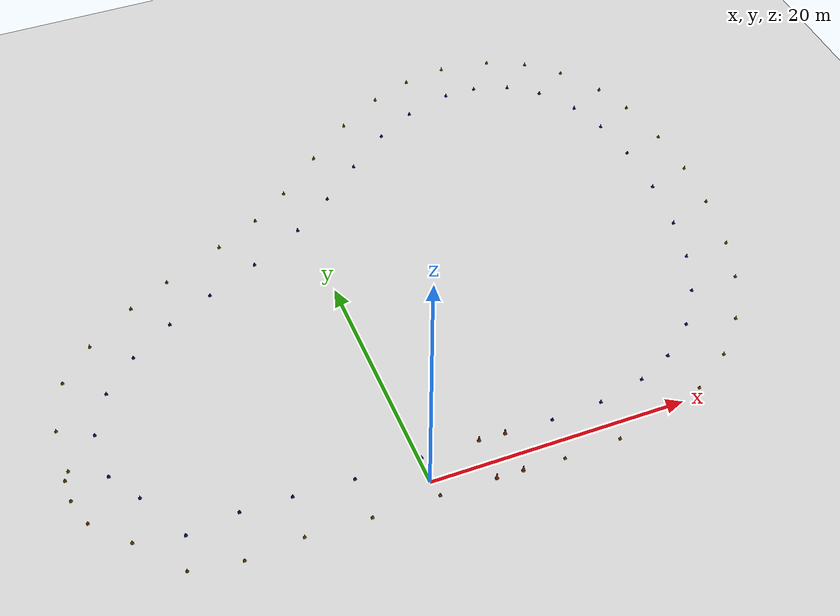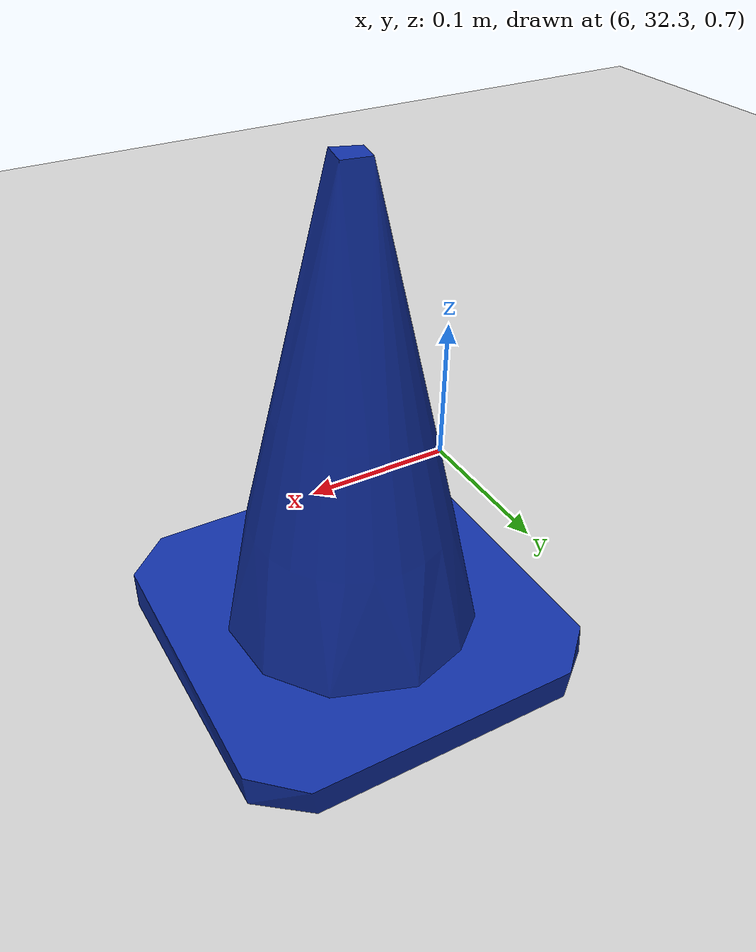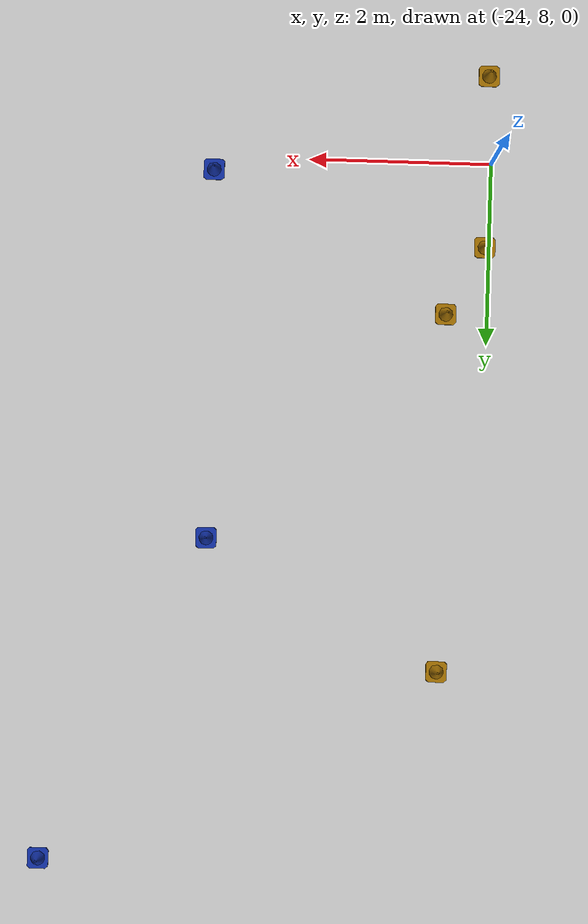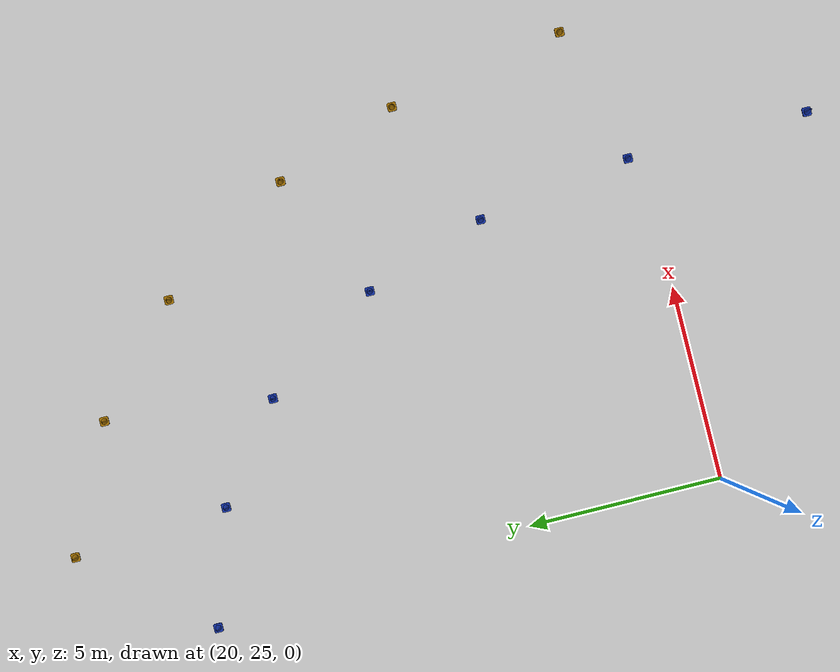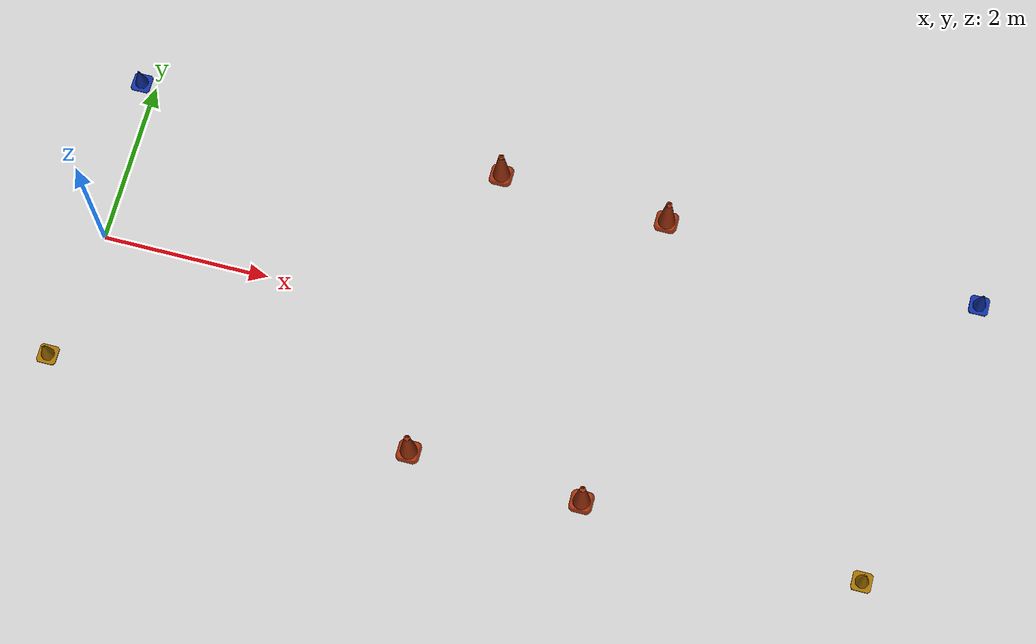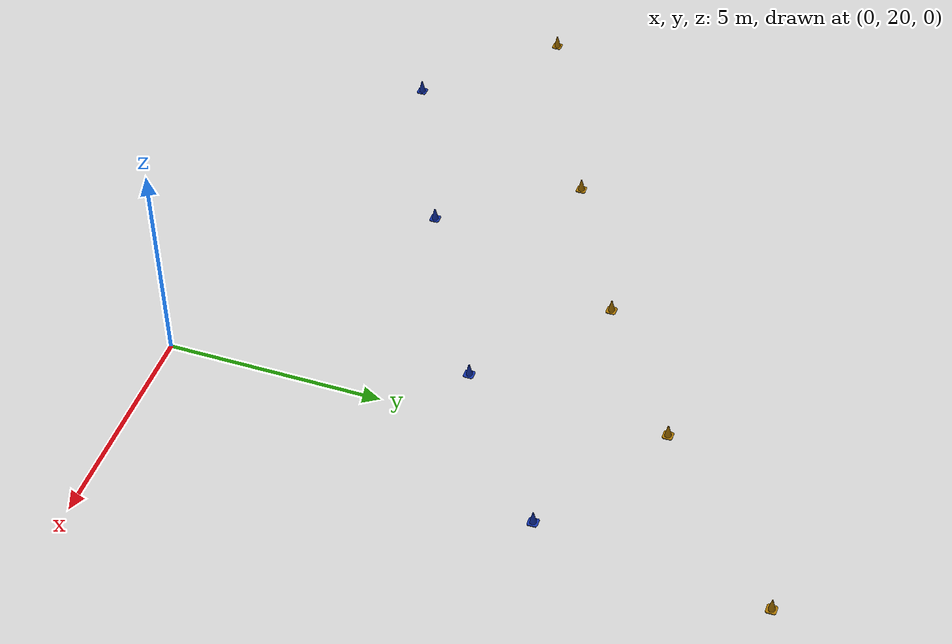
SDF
<sdf version='1.6'>
  <world name='small_track_2'>
    <gui fullscreen='0'>
      <camera name='user_camera'>
        <pose frame=''>-40 40 20 0 0.667643 -1</pose>
        <view_controller>orbit</view_controller>
        <projection_type>perspective</projection_type>
      </camera>
    </gui>

    <!-- WORLD SETTINGS -->
    <scene>
      <ambient>1.0 1.0 1.0 1.0</ambient>
      <shadows>false</shadows>
    </scene>

    <spherical_coordinates>
      <heading_deg>180</heading_deg>

      <!-- Appleton Tower coordinates -->
      <latitude_deg>-27.690733</latitude_deg>
      <longitude_deg>152.656715</longitude_deg>
    </spherical_coordinates>

    <light name='sun' type='directional'>
      <cast_shadows>1</cast_shadows>
      <pose frame=''>0 0 10 0 -0 0</pose>
      <diffuse>0.8 0.8 0.8 1</diffuse>
      <specular>0.1 0.1 0.1 1</specular>
      <attenuation>
        <range>1000</range>
        <constant>0.9</constant>
        <linear>0.01</linear>
        <quadratic>0.001</quadratic>
      </attenuation>
      <direction>-0.5 0.5 -1</direction>
    </light>

    <!-- MODELS -->
    <include>
      <uri>model://ground_plane</uri>
      <pose>0.0 0.0 0.0 0 0 0</pose>
    </include>

    <include>
      <uri>model://small_track_2</uri>
      <pose>0 0 0.5 0 0 0</pose>
    </include>

  </world>
</sdf>

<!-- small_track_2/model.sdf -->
<sdf version='1.6'>
  <model name='track'>

    <include>
      <pose>10.07 1.47 0.15 0 0 0</pose>
      <uri>model://blue_cone</uri>
      <name>blue_cone_0</name>

      <covariance x="0.01" y="0.01" xy="0.0"/>

    </include>

    <include>
      <pose>14.07 1.67 0.15 0 0 0</pose>
      <uri>model://blue_cone</uri>
      <name>blue_cone_1</name>

      <covariance x="0.01" y="0.01" xy="0.0"/>

    </include>

    <include>
      <pose>17.85 2.52 0.15 0 0 0</pose>
      <uri>model://blue_cone</uri>
      <name>blue_cone_2</name>

      <covariance x="0.01" y="0.01" xy="0.0"/>

    </include>

    <include>
      <pose>20.75 3.87 0.15 0 0 0</pose>
      <uri>model://blue_cone</uri>
      <name>blue_cone_3</name>

      <covariance x="0.01" y="0.01" xy="0.0"/>

    </include>

    <include>
      <pose>23.57 6.19 0.15 0 0 0</pose>
      <uri>model://blue_cone</uri>
      <name>blue_cone_4</name>

      <covariance x="0.01" y="0.01" xy="0.0"/>

    </include>

    <include>
      <pose>25.68 9.18 0.15 0 0 0</pose>
      <uri>model://blue_cone</uri>
      <name>blue_cone_5</name>

      <covariance x="0.01" y="0.01" xy="0.0"/>

    </include>

    <include>
      <pose>27.1 12.65 0.15 0 0 0</pose>
      <uri>model://blue_cone</uri>
      <name>blue_cone_6</name>

      <covariance x="0.01" y="0.01" xy="0.0"/>

    </include>

    <include>
      <pose>27.96 16.42 0.15 0 0 0</pose>
      <uri>model://blue_cone</uri>
      <name>blue_cone_7</name>

      <covariance x="0.01" y="0.01" xy="0.0"/>

    </include>

    <include>
      <pose>28.42 20.92 0.15 0 0 0</pose>
      <uri>model://blue_cone</uri>
      <name>blue_cone_8</name>

      <covariance x="0.01" y="0.01" xy="0.0"/>

    </include>

    <include>
      <pose>28.38 25.49 0.15 0 0 0</pose>
      <uri>model://blue_cone</uri>
      <name>blue_cone_9</name>

      <covariance x="0.01" y="0.01" xy="0.0"/>

    </include>

    <include>
      <pose>27.8 29.39 0.15 0 0 0</pose>
      <uri>model://blue_cone</uri>
      <name>blue_cone_10</name>

      <covariance x="0.01" y="0.01" xy="0.0"/>

    </include>

    <include>
      <pose>26.75 32.48 0.15 0 0 0</pose>
      <uri>model://blue_cone</uri>
      <name>blue_cone_11</name>

      <covariance x="0.01" y="0.01" xy="0.0"/>

    </include>

    <include>
      <pose>24.76 35.45 0.15 0 0 0</pose>
      <uri>model://blue_cone</uri>
      <name>blue_cone_12</name>

      <covariance x="0.01" y="0.01" xy="0.0"/>

    </include>

    <include>
      <pose>22.43 37.23 0.15 0 0 0</pose>
      <uri>model://blue_cone</uri>
      <name>blue_cone_13</name>

      <covariance x="0.01" y="0.01" xy="0.0"/>

    </include>

    <include>
      <pose>19.59 38.14 0.15 0 0 0</pose>
      <uri>model://blue_cone</uri>
      <name>blue_cone_14</name>

      <covariance x="0.01" y="0.01" xy="0.0"/>

    </include>

    <include>
      <pose>16.93 38.16 0.15 0 0 0</pose>
      <uri>model://blue_cone</uri>
      <name>blue_cone_15</name>

      <covariance x="0.01" y="0.01" xy="0.0"/>

    </include>

    <include>
      <pose>13.0 37.03 0.15 0 0 0</pose>
      <uri>model://blue_cone</uri>
      <name>blue_cone_16</name>

      <covariance x="0.01" y="0.01" xy="0.0"/>

    </include>

    <include>
      <pose>9.69 35.16 0.15 0 0 0</pose>
      <uri>model://blue_cone</uri>
      <name>blue_cone_17</name>

      <covariance x="0.01" y="0.01" xy="0.0"/>

    </include>

    <include>
      <pose>6.11 32.37 0.15 0 0 0</pose>
      <uri>model://blue_cone</uri>
      <name>blue_cone_18</name>

      <covariance x="0.01" y="0.01" xy="0.0"/>

    </include>

    <include>
      <pose>2.73 29.44 0.15 0 0 0</pose>
      <uri>model://blue_cone</uri>
      <name>blue_cone_19</name>

      <covariance x="0.01" y="0.01" xy="0.0"/>

    </include>

    <include>
      <pose>-0.75 26.8 0.15 0 0 0</pose>
      <uri>model://blue_cone</uri>
      <name>blue_cone_20</name>

      <covariance x="0.01" y="0.01" xy="0.0"/>

    </include>

    <include>
      <pose>-5.17 24.36 0.15 0 0 0</pose>
      <uri>model://blue_cone</uri>
      <name>blue_cone_21</name>

      <covariance x="0.01" y="0.01" xy="0.0"/>

    </include>

    <include>
      <pose>-9.41 22.44 0.15 0 0 0</pose>
      <uri>model://blue_cone</uri>
      <name>blue_cone_22</name>

      <covariance x="0.01" y="0.01" xy="0.0"/>

    </include>

    <include>
      <pose>-13.13 20.61 0.15 0 0 0</pose>
      <uri>model://blue_cone</uri>
      <name>blue_cone_23</name>

      <covariance x="0.01" y="0.01" xy="0.0"/>

    </include>

    <include>
      <pose>-16.57 18.35 0.15 0 0 0</pose>
      <uri>model://blue_cone</uri>
      <name>blue_cone_24</name>

      <covariance x="0.01" y="0.01" xy="0.0"/>

    </include>

    <include>
      <pose>-19.31 15.66 0.15 0 0 0</pose>
      <uri>model://blue_cone</uri>
      <name>blue_cone_25</name>

      <covariance x="0.01" y="0.01" xy="0.0"/>

    </include>

    <include>
      <pose>-21.0 12.2 0.15 0 0 0</pose>
      <uri>model://blue_cone</uri>
      <name>blue_cone_26</name>

      <covariance x="0.01" y="0.01" xy="0.0"/>

    </include>

    <include>
      <pose>-20.97 8.24 0.15 0 0 0</pose>
      <uri>model://blue_cone</uri>
      <name>blue_cone_27</name>

      <covariance x="0.01" y="0.01" xy="0.0"/>

    </include>

    <include>
      <pose>-19.4 5.65 0.15 0 0 0</pose>
      <uri>model://blue_cone</uri>
      <name>blue_cone_28</name>

      <covariance x="0.01" y="0.01" xy="0.0"/>

    </include>

    <include>
      <pose>-17.3 1.5 0.15 0 0 0</pose>
      <uri>model://blue_cone</uri>
      <name>blue_cone_29</name>

      <covariance x="0.01" y="0.01" xy="0.0"/>

    </include>

    <include>
      <pose>-13.36 2.0 0.15 0 0 0</pose>
      <uri>model://blue_cone</uri>
      <name>blue_cone_30</name>

      <covariance x="0.01" y="0.01" xy="0.0"/>

    </include>

    <include>
      <pose>-9.54 1.89 0.15 0 0 0</pose>
      <uri>model://blue_cone</uri>
      <name>blue_cone_31</name>

      <covariance x="0.01" y="0.01" xy="0.0"/>

    </include>

    <include>
      <pose>-5.01 1.72 0.15 0 0 0</pose>
      <uri>model://blue_cone</uri>
      <name>blue_cone_32</name>

      <covariance x="0.01" y="0.01" xy="0.0"/>

    </include>

    <include>
      <pose>-0.0 1.75 0.15 0 0 0</pose>
      <uri>model://blue_cone</uri>
      <name>blue_cone_33</name>

      <covariance x="0.01" y="0.01" xy="0.0"/>

    </include>

    <include>
      <pose>9.43 -2.02 0.15 0 0 0</pose>
      <uri>model://yellow_cone</uri>
      <name>yellow_cone_34</name>

      <covariance x="0.01" y="0.01" xy="0.0"/>

    </include>

    <include>
      <pose>13.85 -1.87 0.15 0 0 0</pose>
      <uri>model://yellow_cone</uri>
      <name>yellow_cone_35</name>

      <covariance x="0.01" y="0.01" xy="0.0"/>

    </include>

    <include>
      <pose>18.35 -1.0 0.15 0 0 0</pose>
      <uri>model://yellow_cone</uri>
      <name>yellow_cone_36</name>

      <covariance x="0.01" y="0.01" xy="0.0"/>

    </include>

    <include>
      <pose>21.43 0.24 0.15 0 0 0</pose>
      <uri>model://yellow_cone</uri>
      <name>yellow_cone_37</name>

      <covariance x="0.01" y="0.01" xy="0.0"/>

    </include>

    <include>
      <pose>24.72 2.45 0.15 0 0 0</pose>
      <uri>model://yellow_cone</uri>
      <name>yellow_cone_38</name>

      <covariance x="0.01" y="0.01" xy="0.0"/>

    </include>

    <include>
      <pose>27.38 5.33 0.15 0 0 0</pose>
      <uri>model://yellow_cone</uri>
      <name>yellow_cone_39</name>

      <covariance x="0.01" y="0.01" xy="0.0"/>

    </include>

    <include>
      <pose>29.59 9.26 0.15 0 0 0</pose>
      <uri>model://yellow_cone</uri>
      <name>yellow_cone_40</name>

      <covariance x="0.01" y="0.01" xy="0.0"/>

    </include>

    <include>
      <pose>30.79 12.84 0.15 0 0 0</pose>
      <uri>model://yellow_cone</uri>
      <name>yellow_cone_41</name>

      <covariance x="0.01" y="0.01" xy="0.0"/>

    </include>

    <include>
      <pose>31.67 17.69 0.15 0 0 0</pose>
      <uri>model://yellow_cone</uri>
      <name>yellow_cone_42</name>

      <covariance x="0.01" y="0.01" xy="0.0"/>

    </include>

    <include>
      <pose>31.96 21.98 0.15 0 0 0</pose>
      <uri>model://yellow_cone</uri>
      <name>yellow_cone_43</name>

      <covariance x="0.01" y="0.01" xy="0.0"/>

    </include>

    <include>
      <pose>31.82 26.37 0.15 0 0 0</pose>
      <uri>model://yellow_cone</uri>
      <name>yellow_cone_44</name>

      <covariance x="0.01" y="0.01" xy="0.0"/>

    </include>

    <include>
      <pose>31.04 30.84 0.15 0 0 0</pose>
      <uri>model://yellow_cone</uri>
      <name>yellow_cone_45</name>

      <covariance x="0.01" y="0.01" xy="0.0"/>

    </include>

    <include>
      <pose>29.92 33.96 0.15 0 0 0</pose>
      <uri>model://yellow_cone</uri>
      <name>yellow_cone_46</name>

      <covariance x="0.01" y="0.01" xy="0.0"/>

    </include>

    <include>
      <pose>27.75 37.35 0.15 0 0 0</pose>
      <uri>model://yellow_cone</uri>
      <name>yellow_cone_47</name>

      <covariance x="0.01" y="0.01" xy="0.0"/>

    </include>

    <include>
      <pose>25.23 39.63 0.15 0 0 0</pose>
      <uri>model://yellow_cone</uri>
      <name>yellow_cone_48</name>

      <covariance x="0.01" y="0.01" xy="0.0"/>

    </include>

    <include>
      <pose>22.14 41.14 0.15 0 0 0</pose>
      <uri>model://yellow_cone</uri>
      <name>yellow_cone_49</name>

      <covariance x="0.01" y="0.01" xy="0.0"/>

    </include>

    <include>
      <pose>17.95 41.73 0.15 0 0 0</pose>
      <uri>model://yellow_cone</uri>
      <name>yellow_cone_50</name>

      <covariance x="0.01" y="0.01" xy="0.0"/>

    </include>

    <include>
      <pose>14.36 41.22 0.15 0 0 0</pose>
      <uri>model://yellow_cone</uri>
      <name>yellow_cone_51</name>

      <covariance x="0.01" y="0.01" xy="0.0"/>

    </include>

    <include>
      <pose>10.9 39.92 0.15 0 0 0</pose>
      <uri>model://yellow_cone</uri>
      <name>yellow_cone_52</name>

      <covariance x="0.01" y="0.01" xy="0.0"/>

    </include>

    <include>
      <pose>7.13 37.64 0.15 0 0 0</pose>
      <uri>model://yellow_cone</uri>
      <name>yellow_cone_53</name>

      <covariance x="0.01" y="0.01" xy="0.0"/>

    </include>

    <include>
      <pose>3.32 34.59 0.15 0 0 0</pose>
      <uri>model://yellow_cone</uri>
      <name>yellow_cone_54</name>

      <covariance x="0.01" y="0.01" xy="0.0"/>

    </include>

    <include>
      <pose>-0.43 31.37 0.15 0 0 0</pose>
      <uri>model://yellow_cone</uri>
      <name>yellow_cone_55</name>

      <covariance x="0.01" y="0.01" xy="0.0"/>

    </include>

    <include>
      <pose>-3.61 29.13 0.15 0 0 0</pose>
      <uri>model://yellow_cone</uri>
      <name>yellow_cone_56</name>

      <covariance x="0.01" y="0.01" xy="0.0"/>

    </include>

    <include>
      <pose>-7.22 27.26 0.15 0 0 0</pose>
      <uri>model://yellow_cone</uri>
      <name>yellow_cone_57</name>

      <covariance x="0.01" y="0.01" xy="0.0"/>

    </include>

    <include>
      <pose>-12.16 25.03 0.15 0 0 0</pose>
      <uri>model://yellow_cone</uri>
      <name>yellow_cone_58</name>

      <covariance x="0.01" y="0.01" xy="0.0"/>

    </include>

    <include>
      <pose>-15.49 23.29 0.15 0 0 0</pose>
      <uri>model://yellow_cone</uri>
      <name>yellow_cone_59</name>

      <covariance x="0.01" y="0.01" xy="0.0"/>

    </include>

    <include>
      <pose>-19.35 20.61 0.15 0 0 0</pose>
      <uri>model://yellow_cone</uri>
      <name>yellow_cone_60</name>

      <covariance x="0.01" y="0.01" xy="0.0"/>

    </include>

    <include>
      <pose>-22.07 17.82 0.15 0 0 0</pose>
      <uri>model://yellow_cone</uri>
      <name>yellow_cone_61</name>

      <covariance x="0.01" y="0.01" xy="0.0"/>

    </include>

    <include>
      <pose>-23.5 13.56 0.15 0 0 0</pose>
      <uri>model://yellow_cone</uri>
      <name>yellow_cone_62</name>

      <covariance x="0.01" y="0.01" xy="0.0"/>

    </include>

    <include>
      <pose>-23.5 9.73 0.15 0 0 0</pose>
      <uri>model://yellow_cone</uri>
      <name>yellow_cone_63</name>

      <covariance x="0.01" y="0.01" xy="0.0"/>

    </include>

    <include>
      <pose>-23.9 9.0 0.15 0 0 0</pose>
      <uri>model://yellow_cone</uri>
      <name>yellow_cone_64</name>

      <covariance x="0.01" y="0.01" xy="0.0"/>

    </include>

    <include>
      <pose>-23.9 7.15 0.15 0 0 0</pose>
      <uri>model://yellow_cone</uri>
      <name>yellow_cone_65</name>

      <covariance x="0.01" y="0.01" xy="0.0"/>

    </include>

    <include>
      <pose>-23.26 4.88 0.15 0 0 0</pose>
      <uri>model://yellow_cone</uri>
      <name>yellow_cone_66</name>

      <covariance x="0.01" y="0.01" xy="0.0"/>

    </include>

    <include>
      <pose>-20.83 2.23 0.15 0 0 0</pose>
      <uri>model://yellow_cone</uri>
      <name>yellow_cone_67</name>

      <covariance x="0.01" y="0.01" xy="0.0"/>

    </include>

    <include>
      <pose>-18.0 -1.3 0.15 0 0 0</pose>
      <uri>model://yellow_cone</uri>
      <name>yellow_cone_68</name>

      <covariance x="0.01" y="0.01" xy="0.0"/>

    </include>

    <include>
      <pose>-14.2 -1.9 0.15 0 0 0</pose>
      <uri>model://yellow_cone</uri>
      <name>yellow_cone_69</name>

      <covariance x="0.01" y="0.01" xy="0.0"/>

    </include>

    <include>
      <pose>-9.86 -1.6 0.15 0 0 0</pose>
      <uri>model://yellow_cone</uri>
      <name>yellow_cone_70</name>

      <covariance x="0.01" y="0.01" xy="0.0"/>

    </include>

    <include>
      <pose>-5.01 -1.78 0.15 0 0 0</pose>
      <uri>model://yellow_cone</uri>
      <name>yellow_cone_71</name>

      <covariance x="0.01" y="0.01" xy="0.0"/>

    </include>

    <include>
      <pose>0.0 -1.75 0.15 0 0 0</pose>
      <uri>model://yellow_cone</uri>
      <name>yellow_cone_72</name>

      <covariance x="0.01" y="0.01" xy="0.0"/>

    </include>

    <include>
      <pose>6.39 1.58 0.15 0 0 0</pose>
      <uri>model://big_cone</uri>
      <name>big_cone_73</name>

      <covariance x="0.01" y="0.01" xy="0.0"/>

    </include>

    <include>
      <pose>6.25 -1.91 0.15 0 0 0</pose>
      <uri>model://big_cone</uri>
      <name>big_cone_74</name>

      <covariance x="0.01" y="0.01" xy="0.0"/>

    </include>

    <include>
      <pose>4.4 1.67 0.15 0 0 0</pose>
      <uri>model://big_cone</uri>
      <name>big_cone_75</name>

      <covariance x="0.01" y="0.01" xy="0.0"/>

    </include>

    <include>
      <pose>4.25 -1.83 0.15 0 0 0</pose>
      <uri>model://big_cone</uri>
      <name>big_cone_76</name>

      <covariance x="0.01" y="0.01" xy="0.0"/>

    </include>

    <static>0</static>
    <allow_auto_disable>1</allow_auto_disable>
  </model>
</sdf>

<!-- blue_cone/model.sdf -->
<sdf version='1.6'>
  <model name='blue_cone'>
    <link name='link'>
      <pose frame=''>0 0 0 0 0 0</pose>
      <inertial>
        <inertia>
          <ixx>0.0016</ixx>
          <ixy>0</ixy>
          <ixz>0</ixz>
          <iyy>0.0016</iyy>
          <iyz>0</iyz>
          <izz>0.0010</izz>
        </inertia>
        <mass>0.45</mass>
      </inertial>
      <visual name='visual'>
        <geometry>
          <mesh>
            <uri>model://cone_blue.dae</uri>
          </mesh>
        </geometry>
        <cast_shadows>1</cast_shadows>
      </visual>
      <collision name='collision'>
        <max_contacts>3</max_contacts>
        <geometry>
          <mesh>
            <uri>model://cone_blue.dae</uri>
          </mesh>
        </geometry>
      </collision>
    </link>
  </model>
</sdf>

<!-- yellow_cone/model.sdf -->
<sdf version='1.6'>
  <model name='yellow_cone'>
    <link name='link'>
      <pose frame=''>0 0 0 0 0 0</pose>
      <inertial>
        <inertia>
          <ixx>0.0016</ixx>
          <ixy>0</ixy>
          <ixz>0</ixz>
          <iyy>0.0016</iyy>
          <iyz>0</iyz>
          <izz>0.0010</izz>
        </inertia>
        <mass>0.45</mass>
      </inertial>
      <visual name='visual'>
        <geometry>
          <mesh>
            <uri>model://cone_yellow.dae</uri>
          </mesh>
        </geometry>
        <cast_shadows>1</cast_shadows>
      </visual>
      <collision name='collision'>
        <max_contacts>3</max_contacts>
        <geometry>
          <mesh>
            <uri>model://cone_yellow.dae</uri>
          </mesh>
        </geometry>
      </collision>
    </link>
  </model>
</sdf>

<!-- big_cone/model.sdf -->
<sdf version='1.6'>
  <model name='big_cone'>
    <link name='link'>
      <pose frame=''>0 0 0 0 0 0</pose>
      <inertial>
        <inertia>
          <ixx>0.0016</ixx>
          <ixy>0</ixy>
          <ixz>0</ixz>
          <iyy>0.0016</iyy>
          <iyz>0</iyz>
          <izz>0.0010</izz>
        </inertia>
        <mass>0.45</mass>
      </inertial>
      <visual name='visual'>
        <geometry>
          <mesh>
            <uri>model://cone_big.dae</uri>
          </mesh>
        </geometry>
        <cast_shadows>1</cast_shadows>
      </visual>
      <collision name='collision'>
        <max_contacts>3</max_contacts>
        <geometry>
          <mesh>
            <uri>model://cone_big.dae</uri>
          </mesh>
        </geometry>
      </collision>
    </link>
  </model>
</sdf>
